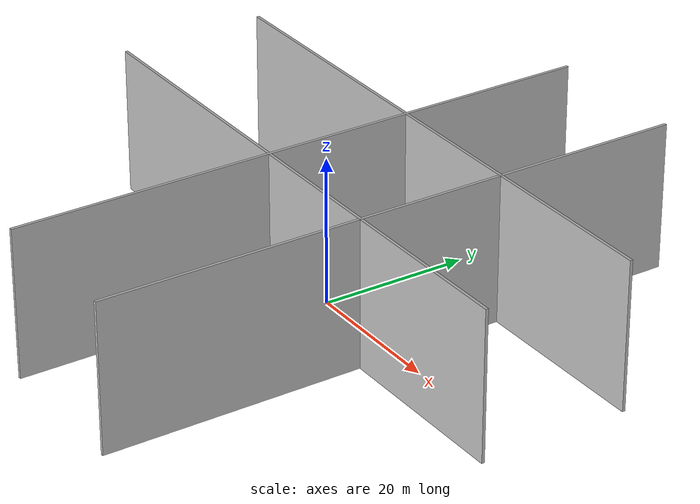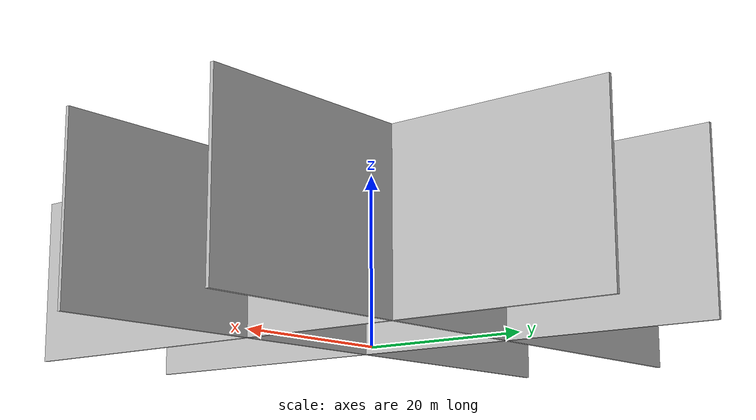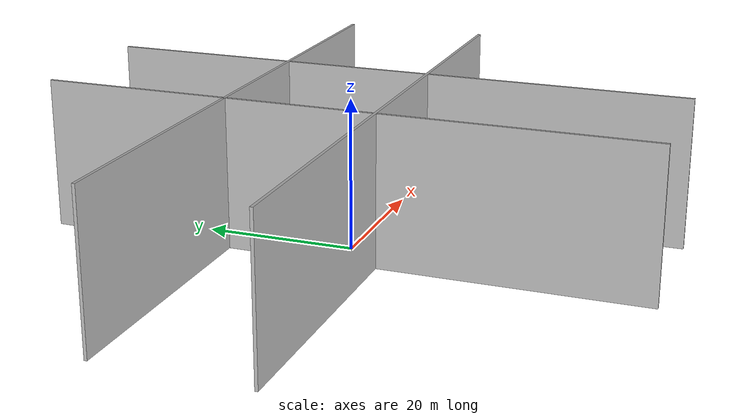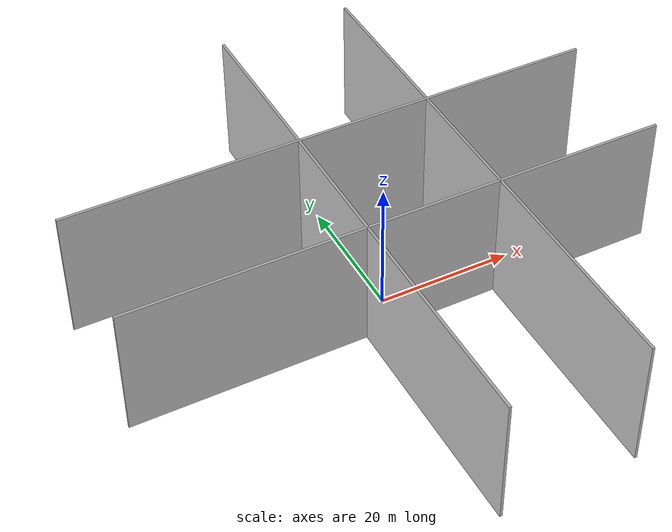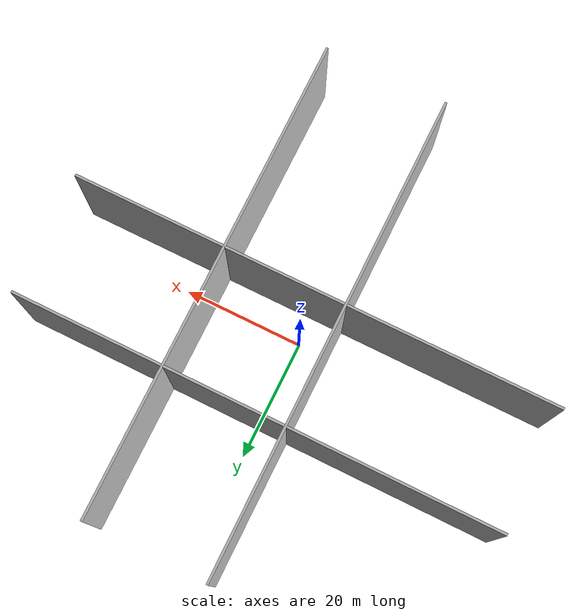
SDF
<?xml version="1.0" ?>
<sdf version="1.5">
  <model name="bbox_tight">

    <include>
      <name>w1</name>
      <pose>0 15 0 0 0 0</pose>
      <uri>model://bbox_wall</uri>
    </include>
	<include>
      <name>w2</name>
      <pose>0 -5 0 0 0 0</pose>
      <uri>model://bbox_wall</uri>
    </include>
	<include>
      <name>w3</name>
      <pose>15 0 0 0 0 1.5708</pose>
      <uri>model://bbox_wall</uri>
    </include>
	<include>
      <name>w4</name>
      <pose>-5 0 0 0 0 1.5708</pose>
      <uri>model://bbox_wall</uri>
    </include>
  </model>
</sdf>

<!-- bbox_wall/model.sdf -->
<sdf version="1.5">
  <model name="bbox_wall">
    <static>true</static>
    <link name="link">
      <pose>0 0 10 0 0 0</pose>
      <collision name="collision">
        <geometry>
          <box>
            <size>80 0.4 20</size>
          </box>
        </geometry>
      </collision>
      <visual name="visual">
        <geometry>
          <box>
            <size>80 0.4 20</size>
          </box>
        </geometry>
        <material>
          <script>
            <uri>model://bbox_wall/materials/scripts</uri>
            <uri>model://bbox_wall/materials/textures</uri>
            <name>vrc/bbox_wall</name>
          </script>
        </material>
      </visual>
    </link>
  </model>
</sdf>
